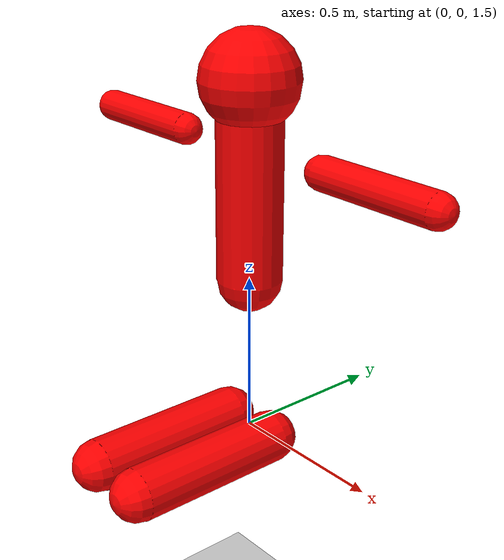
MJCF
<mujoco model="wooden_man_with_joint">
  <compiler angle="degree" coordinate="local"/>
  <option timestep="0.01"/>

  <worldbody>
    <!-- 地面 -->
    <geom name="floor" type="plane" size="2 2 0.1" rgba="0.8 0.8 0.8 1"/>
    <!-- 躯干 -->
    <body name="torso" pos="0 0 1.0">
      <geom name="torso_geom" type="capsule" fromto="0 0 1.0 0 0 1.5" size="0.1" rgba="1 0 0 1"/>

      <body name="head" pos="0 0 1.6">
        <geom name="head_geom" type="sphere" size="0.15" rgba="1 0 0 1"/>
      </body>

      <!-- 左臂（加关节） -->
      <body name="left_arm" pos="-0.3 0 1.4">
        <joint name="left_shoulder" type="hinge" axis="0 0 1" pos="0 0 0"/>
        <geom name="left_arm_geom" type="capsule" fromto="0 0 0 -0.4 0 0" size="0.05" rgba="1 0 0 1"/>
      </body>

      <!-- 右臂（固定） -->
      <body name="right_arm" pos="0.3 0 1.4">
        <geom name="right_arm_geom" type="capsule" fromto="0 0 0 0.4 0 0" size="0.05" rgba="1 0 0 1"/>
      </body>

      <!-- 左腿 -->
      <body name="left_leg" pos="-0.1 0 0.5">
        <geom name="left_leg_geom" type="capsule" fromto="0 0 0 0 -0.5 0" size="0.08" rgba="1 0 0 1"/>
      </body>

      <!-- 右腿 -->
      <body name="right_leg" pos="0.1 0 0.5">
        <geom name="right_leg_geom" type="capsule" fromto="0 0 0 0 -0.5 0" size="0.08" rgba="1 0 0 1"/>
      </body>
    </body>
  </worldbody>

  <!-- 加上驱动器 -->
  <actuator>
    <motor name="left_arm_motor" joint="left_shoulder" ctrlrange="-1 1" gear="100"/>
  </actuator>
</mujoco>
